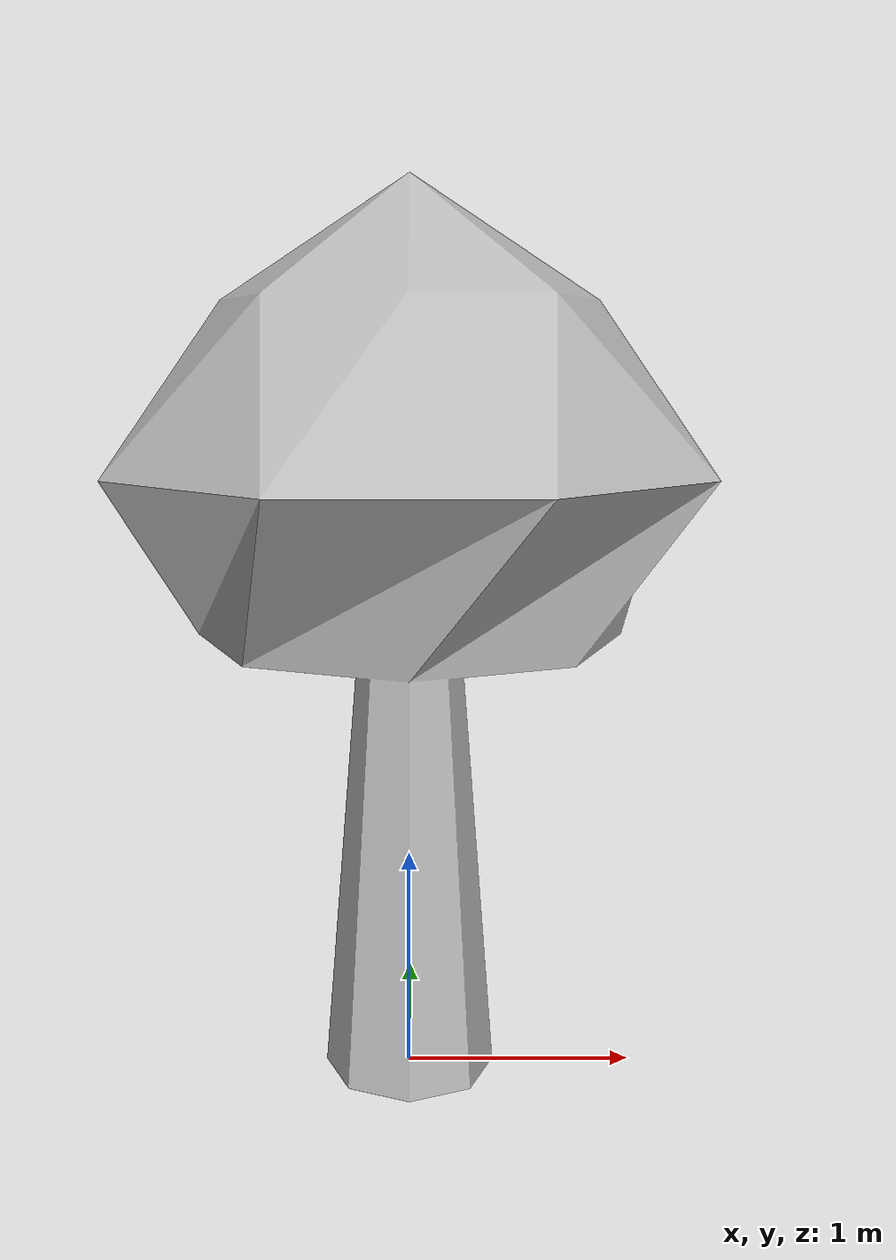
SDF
<?xml version="1.0" ?>
<sdf version="1.8">
  <model name="scrub_tree">
    <static>true</static>
    <link name="link">
      <collision name="col">
        <geometry>
          <cylinder>
            <radius>0.42</radius>
            <length>3.2</length>
          </cylinder>
        </geometry>
        <pose>0 0 1.6 0 0 0</pose>
      </collision>
      <visual name="vis">
        <geometry>
          <mesh>
            <uri>meshes/tree.obj</uri>
          </mesh>
        </geometry>
      </visual>
    </link>
  </model>
</sdf>
